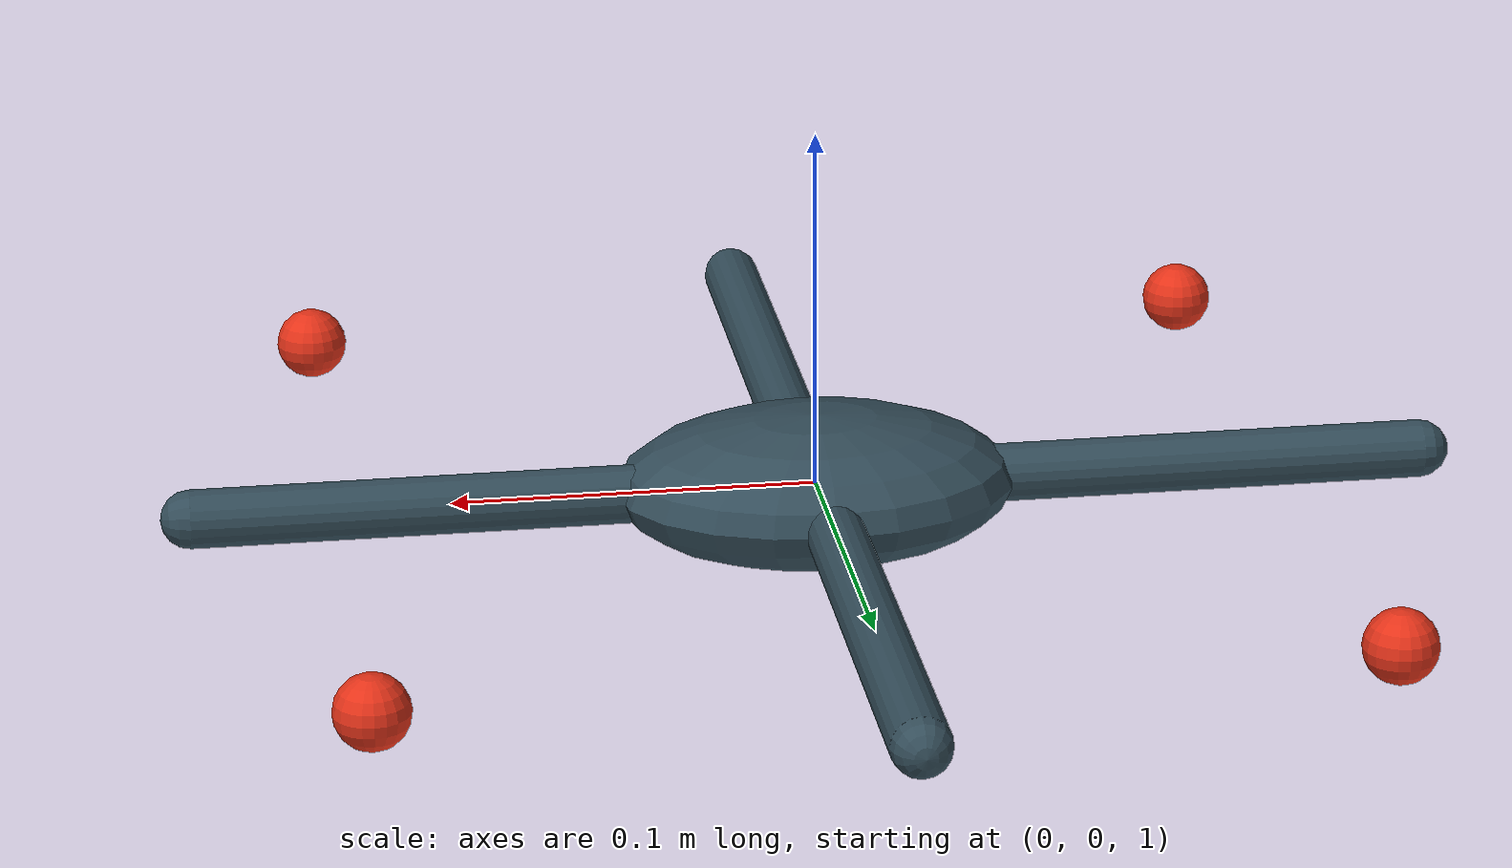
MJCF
<mujoco model="dva_quadrotor_hover">
  <compiler angle="radian" coordinate="local"/>

  <option timestep="0.005" gravity="0 0 -9.81" integrator="RK4"/>

  <default>
    <geom contype="0" conaffinity="0" rgba="0.2 0.3 0.35 1"/>
    <site size="0.01" rgba="0.9 0.2 0.1 1"/>
    <general ctrllimited="true" ctrlrange="0 3.0"/>
  </default>

  <asset>
    <material name="dummy_mat" rgba="1 1 1 1"/>
  </asset>

  <worldbody>
    <light name="key" pos="0 -3 4" dir="0 1 -1"/>
    <geom name="floor" type="plane" size="5 5 0.05" rgba="0.85 0.85 0.8 1"/>

    <body name="quadrotor" pos="0 0 1">
      <freejoint name="root"/>
      <inertial pos="0 0 0" mass="0.75" diaginertia="0.0023 0.0023 0.0040"/>

      <geom name="body" type="ellipsoid" size="0.055 0.04 0.02"/>
      <geom name="arm_x" type="capsule" fromto="-0.17 0 0 0.17 0 0" size="0.008"/>
      <geom name="arm_y" type="capsule" fromto="0 -0.17 0 0 0.17 0" size="0.008"/>

      <site name="rotor_fl" pos="0.13 0.13 0" zaxis="0 0 1"/>
      <site name="rotor_fr" pos="0.13 -0.13 0" zaxis="0 0 1"/>
      <site name="rotor_rl" pos="-0.13 0.13 0" zaxis="0 0 1"/>
      <site name="rotor_rr" pos="-0.13 -0.13 0" zaxis="0 0 1"/>

      <camera name="front" pos="0.08 0 0.02" xyaxes="0 -1 0 0 0 1" fovy="90"/>
    </body>
  </worldbody>

  <actuator>
    <general name="motor_fl" site="rotor_fl" gear="0 0 1 0 0 0.008"/>
    <general name="motor_fr" site="rotor_fr" gear="0 0 1 0 0 -0.008"/>
    <general name="motor_rl" site="rotor_rl" gear="0 0 1 0 0 -0.008"/>
    <general name="motor_rr" site="rotor_rr" gear="0 0 1 0 0 0.008"/>
  </actuator>
  <sensor>
    <rangefinder name="rangefinder_front" site="rotor_fl"/>
  </sensor>
</mujoco>
